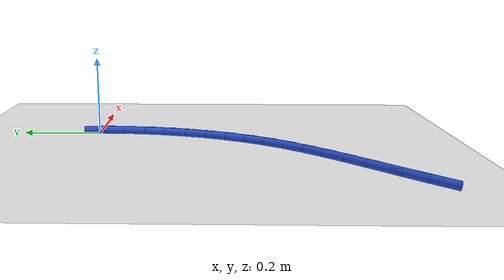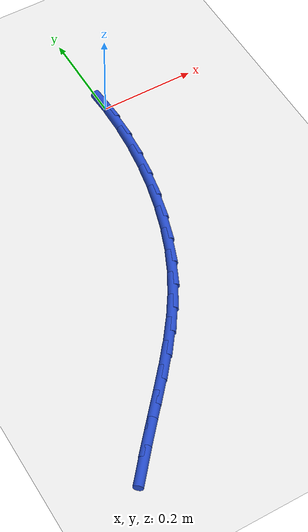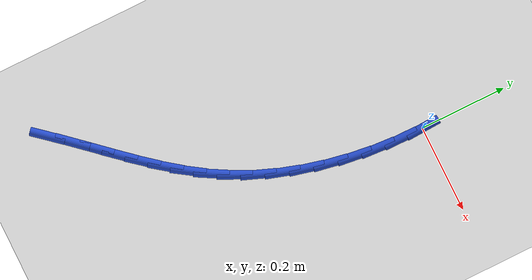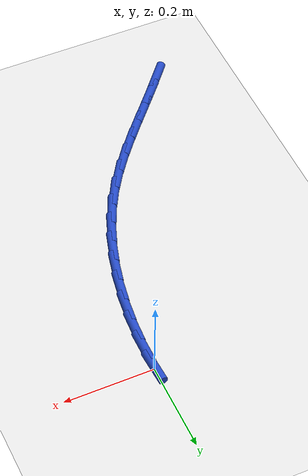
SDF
<sdf version="1.6">
 <world name="default">
  <model name="ground_plane">
   <static>1</static>
   <link name="link">
    <collision name="collision">
     <geometry><plane><normal>0 0 1</normal><size>100 100</size></plane></geometry>
     <surface><friction><ode><mu>100</mu><mu2>50</mu2></ode></friction></surface>
    </collision>
    <visual name="visual">
     <cast_shadows>0</cast_shadows>
     <geometry><plane><normal>0 0 1</normal><size>100 100</size></plane></geometry>
     <material>
      <script><uri>file://media/materials/scripts/gazebo.material</uri><name>Gazebo/WhiteGlow</name></script>
     </material>
    </visual>
   </link>
  </model>
  <model name="line">
   <link name="link_0">
    <pose>-3.469446951953614e-17 -1.3877787807814457e-17 0.01 0 1.57 -1.5203196387642521</pose>
    <collision name="collision">
     <geometry><cylinder><radius>0.01</radius><length>0.08</length></cylinder></geometry>
    </collision>
    <visual name="visual">
     <material>
      <script><name>Gazebo/Blue</name><uri>file://media/materials/scripts/gazebo.material</uri></script>
     </material>
     <geometry><cylinder><radius>0.01</radius><length>0.08</length></cylinder></geometry>
    </visual>
   </link>
   <link name="link_124">
    <pose>-0.34919881228837246 -0.7484537748531899 0.01 0 1.57 0.8621096501551839</pose>
    <collision name="collision">
     <geometry><cylinder><radius>0.01</radius><length>0.08</length></cylinder></geometry>
    </collision>
    <visual name="visual">
     <material>
      <script><name>Gazebo/Blue</name><uri>file://media/materials/scripts/gazebo.material</uri></script>
     </material>
     <geometry><cylinder><radius>0.01</radius><length>0.08</length></cylinder></geometry>
    </visual>
   </link>
   <link name="link_125">
    <pose>-0.31238035363593647 -0.705504157168865 0.01 0 1.57 0.8467780332674987</pose>
    <collision name="collision">
     <geometry><cylinder><radius>0.01</radius><length>0.08</length></cylinder></geometry>
    </collision>
    <visual name="visual">
     <material>
      <script><name>Gazebo/Blue</name><uri>file://media/materials/scripts/gazebo.material</uri></script>
     </material>
     <geometry><cylinder><radius>0.01</radius><length>0.08</length></cylinder></geometry>
    </visual>
   </link>
   <link name="link_126">
    <pose>-0.2760345719118851 -0.6643984329081657 0.01 0 1.57 0.8448498297313992</pose>
    <collision name="collision">
     <geometry><cylinder><radius>0.01</radius><length>0.08</length></cylinder></geometry>
    </collision>
    <visual name="visual">
     <material>
      <script><name>Gazebo/Blue</name><uri>file://media/materials/scripts/gazebo.material</uri></script>
     </material>
     <geometry><cylinder><radius>0.01</radius><length>0.08</length></cylinder></geometry>
    </visual>
   </link>
   <link name="link_127">
    <pose>-0.2405576009152284 -0.6244308665310311 0.01 0 1.57 0.8574538335984869</pose>
    <collision name="collision">
     <geometry><cylinder><radius>0.01</radius><length>0.08</length></cylinder></geometry>
    </collision>
    <visual name="visual">
     <material>
      <script><name>Gazebo/Blue</name><uri>file://media/materials/scripts/gazebo.material</uri></script>
     </material>
     <geometry><cylinder><radius>0.01</radius><length>0.08</length></cylinder></geometry>
    </visual>
   </link>
   <link name="link_128">
    <pose>-0.20634557444497473 -0.5848957224973982 0.01 0 1.57 0.8853619311803937</pose>
    <collision name="collision">
     <geometry><cylinder><radius>0.01</radius><length>0.08</length></cylinder></geometry>
    </collision>
    <visual name="visual">
     <material>
      <script><name>Gazebo/Blue</name><uri>file://media/materials/scripts/gazebo.material</uri></script>
     </material>
     <geometry><cylinder><radius>0.01</radius><length>0.08</length></cylinder></geometry>
    </visual>
   </link>
   <link name="link_129">
    <pose>-0.1737946263001332 -0.5450872652672054 0.01 0 1.57 0.9288173153363333</pose>
    <collision name="collision">
     <geometry><cylinder><radius>0.01</radius><length>0.08</length></cylinder></geometry>
    </collision>
    <visual name="visual">
     <material>
      <script><name>Gazebo/Blue</name><uri>file://media/materials/scripts/gazebo.material</uri></script>
     </material>
     <geometry><cylinder><radius>0.01</radius><length>0.08</length></cylinder></geometry>
    </visual>
   </link>
   <link name="link_130">
    <pose>-0.14330089027971268 -0.5042997593003904 0.01 0 1.57 0.9872809995979399</pose>
    <collision name="collision">
     <geometry><cylinder><radius>0.01</radius><length>0.08</length></cylinder></geometry>
    </collision>
    <visual name="visual">
     <material>
      <script><name>Gazebo/Blue</name><uri>file://media/materials/scripts/gazebo.material</uri></script>
     </material>
     <geometry><cylinder><radius>0.01</radius><length>0.08</length></cylinder></geometry>
    </visual>
   </link>
   <link name="link_131">
    <pose>-0.1152605001827218 -0.46182746905689087 0.01 0 1.57 1.059010181367023</pose>
    <collision name="collision">
     <geometry><cylinder><radius>0.01</radius><length>0.08</length></cylinder></geometry>
    </collision>
    <visual name="visual">
     <material>
      <script><name>Gazebo/Blue</name><uri>file://media/materials/scripts/gazebo.material</uri></script>
     </material>
     <geometry><cylinder><radius>0.01</radius><length>0.08</length></cylinder></geometry>
    </visual>
   </link>
   <link name="link_132">
    <pose>-0.09006625225334569 -0.41697438727574787 0.01 0 1.57 1.1349202266744265</pose>
    <collision name="collision">
     <geometry><cylinder><radius>0.01</radius><length>0.08</length></cylinder></geometry>
    </collision>
    <visual name="visual">
     <material>
      <script><name>Gazebo/Blue</name><uri>file://media/materials/scripts/gazebo.material</uri></script>
     </material>
     <geometry><cylinder><radius>0.01</radius><length>0.08</length></cylinder></geometry>
    </visual>
   </link>
   <link name="link_133">
    <pose>-0.06795478813207259 -0.36949966493237735 0.01 0 1.57 1.2054227018477803</pose>
    <collision name="collision">
     <geometry><cylinder><radius>0.01</radius><length>0.08</length></cylinder></geometry>
    </collision>
    <visual name="visual">
     <material>
      <script><name>Gazebo/Blue</name><uri>file://media/materials/scripts/gazebo.material</uri></script>
     </material>
     <geometry><cylinder><radius>0.01</radius><length>0.08</length></cylinder></geometry>
    </visual>
   </link>
   <link name="link_134">
    <pose>-0.04894314432460435 -0.31980255635799326 0.01 0 1.57 1.2709901225649247</pose>
    <collision name="collision">
     <geometry><cylinder><radius>0.01</radius><length>0.08</length></cylinder></geometry>
    </collision>
    <visual name="visual">
     <material>
      <script><name>Gazebo/Blue</name><uri>file://media/materials/scripts/gazebo.material</uri></script>
     </material>
     <geometry><cylinder><radius>0.01</radius><length>0.08</length></cylinder></geometry>
    </visual>
   </link>
   <link name="link_135">
    <pose>-0.0330318653296962 -0.2683303866586592 0.01 0 1.57 1.3327745044079975</pose>
    <collision name="collision">
     <geometry><cylinder><radius>0.01</radius><length>0.08</length></cylinder></geometry>
    </collision>
    <visual name="visual">
     <material>
      <script><name>Gazebo/Blue</name><uri>file://media/materials/scripts/gazebo.material</uri></script>
     </material>
     <geometry><cylinder><radius>0.01</radius><length>0.08</length></cylinder></geometry>
    </visual>
   </link>
   <link name="link_136">
    <pose>-0.020221495646103992 -0.21553048094044072 0.01 0 1.57 1.3918652032627417</pose>
    <collision name="collision">
     <geometry><cylinder><radius>0.01</radius><length>0.08</length></cylinder></geometry>
    </collision>
    <visual name="visual">
     <material>
      <script><name>Gazebo/Blue</name><uri>file://media/materials/scripts/gazebo.material</uri></script>
     </material>
     <geometry><cylinder><radius>0.01</radius><length>0.08</length></cylinder></geometry>
    </visual>
   </link>
   <link name="link_137">
    <pose>-0.010512579772582862 -0.1618501643094014 0.01 0 1.57 1.4493037168184293</pose>
    <collision name="collision">
     <geometry><cylinder><radius>0.01</radius><length>0.08</length></cylinder></geometry>
    </collision>
    <visual name="visual">
     <material>
      <script><name>Gazebo/Blue</name><uri>file://media/materials/scripts/gazebo.material</uri></script>
     </material>
     <geometry><cylinder><radius>0.01</radius><length>0.08</length></cylinder></geometry>
    </visual>
   </link>
   <link name="link_138">
    <pose>-0.0039056622078882247 -0.10773676187160554 0.01 0 1.57 1.5061098260380101</pose>
    <collision name="collision">
     <geometry><cylinder><radius>0.01</radius><length>0.08</length></cylinder></geometry>
    </collision>
    <visual name="visual">
     <material>
      <script><name>Gazebo/Blue</name><uri>file://media/materials/scripts/gazebo.material</uri></script>
     </material>
     <geometry><cylinder><radius>0.01</radius><length>0.08</length></cylinder></geometry>
    </visual>
   </link>
   <link name="link_139">
    <pose>-0.0004012874507754744 -0.053637598733117235 0.01 0 1.57 1.5633150082138605</pose>
    <collision name="collision">
     <geometry><cylinder><radius>0.01</radius><length>0.08</length></cylinder></geometry>
    </collision>
    <visual name="visual">
     <material>
      <script><name>Gazebo/Blue</name><uri>file://media/materials/scripts/gazebo.material</uri></script>
     </material>
     <geometry><cylinder><radius>0.01</radius><length>0.08</length></cylinder></geometry>
    </visual>
   </link>
  </model>
 </world>
</sdf>
